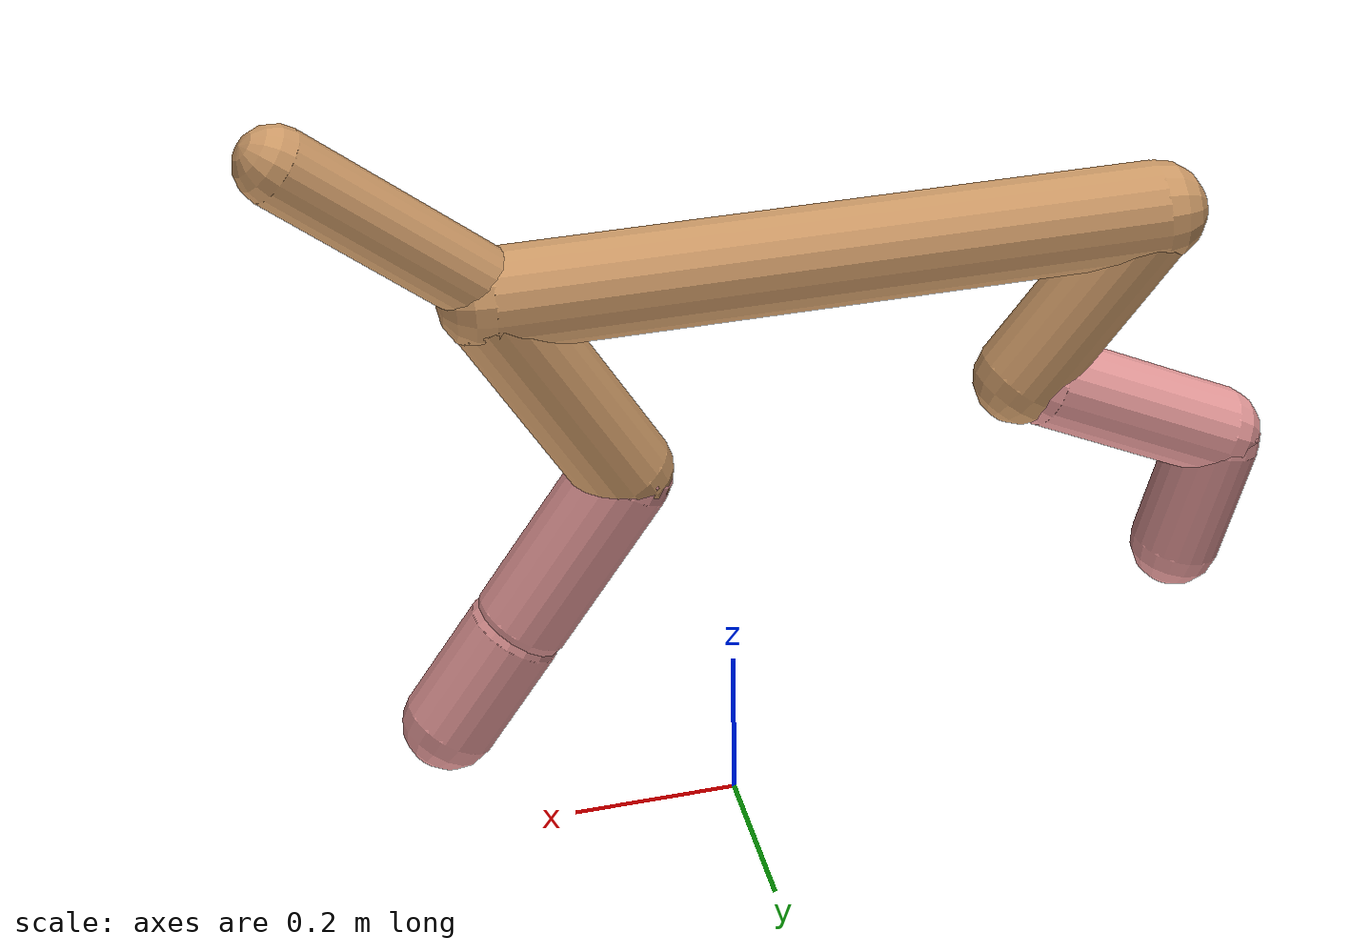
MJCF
<mujoco model="cheetah">
  <compiler angle="radian" coordinate="local" inertiafromgeom="true" settotalmass="14" />
  <default>
    <joint armature=".1" damping=".01" limited="true" solimplimit="0 .8 .03" solreflimit=".02 1" stiffness="8" />
    <geom conaffinity="0" condim="3" contype="1" friction="0.8 .1 .1" rgba="0.8 0.6 .4 1" solimp="0.0 0.8 0.01" solref="0.02 1" />
    <motor ctrllimited="true" ctrlrange="-1 1" />
  </default>
  <size nstack="300000" nuser_geom="1" />
  <option gravity="0 0 -9.81" timestep="0.01" />
  <worldbody>
    <body name="torso" pos="0.0 0.0 0.7464908247583928">
      <joint armature="0" axis="1 0 0" damping="0" limited="false" name="ignorex" pos="0 0 0" stiffness="0" type="slide" />
      <joint armature="0" axis="0 0 1" damping="0" limited="false" name="ignorez" pos="0 0 0" stiffness="0" type="slide" />
      <joint armature="0" axis="0 1 0" damping="0" limited="false" name="ignorey" pos="0 0 0" stiffness="0" type="hinge" />
      <geom fromto="-0.5 0.0 0.0 0.2674013166435724 0.0 0.0" name="torso" size="0.058514942857458084" type="capsule" />
      <geom axisangle="0 1 0 .87" name="head" pos="0.36740131664357245 0.0 0.1" size="0.0444893393368166 0.15" type="capsule" />

      <body name="bthigh" pos="-.5 0 0">
        <joint axis="0 1 0" damping="6" name="bthigh" pos="0 0 0" range="-.52 1.05" stiffness="240" type="hinge" />
        <geom axisangle="0 1 0 -3.8" name="bthigh" pos="0.08285686289761293 0.0 -0.10771392176689681" size="0.05457376372714521 0.11688316460333353" type="capsule" />
        <body name="bshin" pos="0.12571372579522586 0.0 -0.20542784353379362">
          <joint axis="0 1 0" damping="4.5" name="bshin" pos="0 0 0" range="-.785 .785" stiffness="180" type="hinge" />
          <geom axisangle="0 1 0 -2.03" name="bshin" pos="-0.11398434954795099 0.0 -0.056992174773975494" rgba="0.9 0.6 0.6 1" size="0.05457376372714521 0.12091361855517262" type="capsule" />
          <body name="bfoot" pos="-0.22796869909590198 0.0 -0.11398434954795099">
            <joint axis="0 1 0" damping="3" name="bfoot" pos="0 0 0" range="-.4 .785" stiffness="120" type="hinge" />
            <geom axisangle="0 1 0 -.27" name="bfoot" pos="0.024614335758446536 0.0 -0.07958635228564381" rgba="0.9 0.6 0.6 1" size="0.05457376372714521 0.07577253429457484" type="capsule" />
            <inertial mass="10" />
          </body>
        </body>
      </body>
      <body name="fthigh" pos="0.2674013166435725 0.0 0.0">
        <joint axis="0 1 0" damping="4.5" name="fthigh" pos="0 0 0" range="-1.5 0.8" stiffness="180" type="hinge" />
        <geom axisangle="0 1 0 .52" name="fthigh" pos="-0.07325897016730835 0.0 -0.1255868060011" size="0.057378802613140406 0.139467865787517" type="capsule" />
        <body name="fshin" pos="-0.1465179403346167 0.0 -0.2511736120022">
          <joint axis="0 1 0" damping="3" name="fshin" pos="0 0 0" range="-1.2 1.1" stiffness="120" type="hinge" />
          <geom axisangle="0 1 0 -.6" name="fshin" pos="0.06801811036199382 0.0 -0.09417892203968373" rgba="0.9 0.6 0.6 1" size="0.057378802613140406 0.1111548404020812" type="capsule" />
          <body name="ffoot" pos="0.13603622072398763 0.0 -0.18835784407936745">
            <joint axis="0 1 0" damping="1.5" name="ffoot" pos="0 0 0" range="-3.1 -0.3" stiffness="60" type="hinge" />
            <geom axisangle="0 1 0 -.6" name="ffoot" pos="0.0468408144864193 0.0 -0.0728634892010967" rgba="0.9 0.6 0.6 1" size="0.057378802613140406 0.07340413988816684" type="capsule" />
            <inertial mass="10" />
          </body>
        </body>
      </body>
    </body>
  </worldbody>
  <actuator>
    <motor gear="120" joint="bthigh" name="bthigh" />
    <motor gear="90" joint="bshin" name="bshin" />
    <motor gear="60" joint="bfoot" name="bfoot" />
    <motor gear="120" joint="fthigh" name="fthigh" />
    <motor gear="60" joint="fshin" name="fshin" />
    <motor gear="30" joint="ffoot" name="ffoot" />
  </actuator>
</mujoco>
